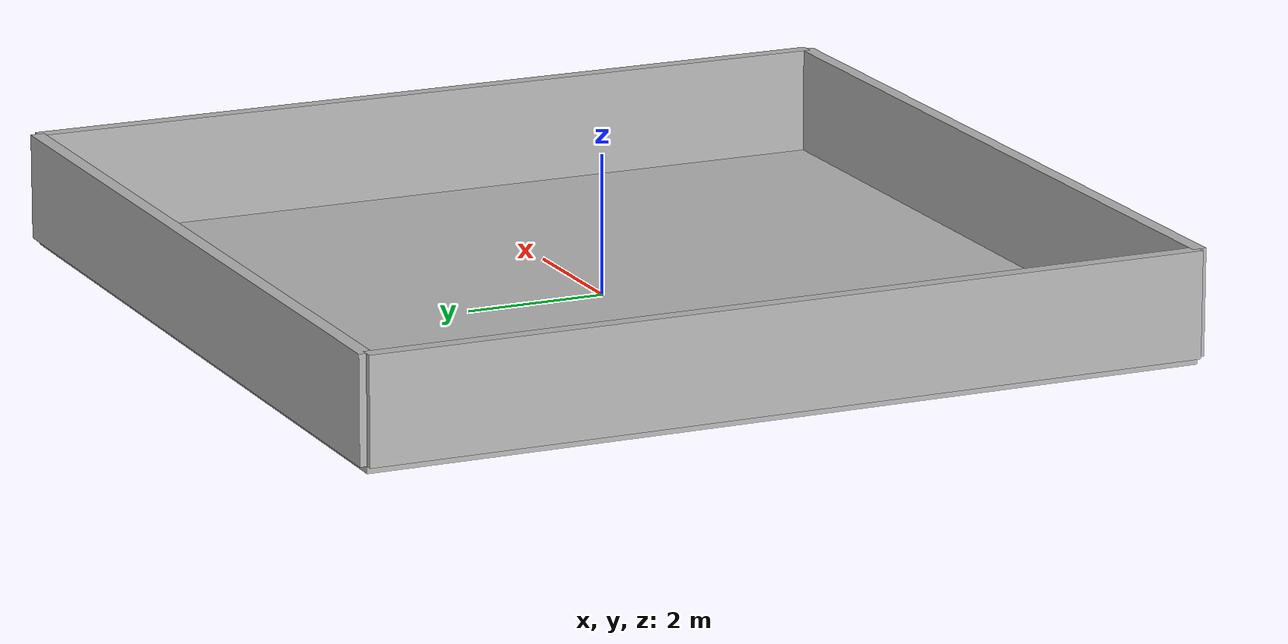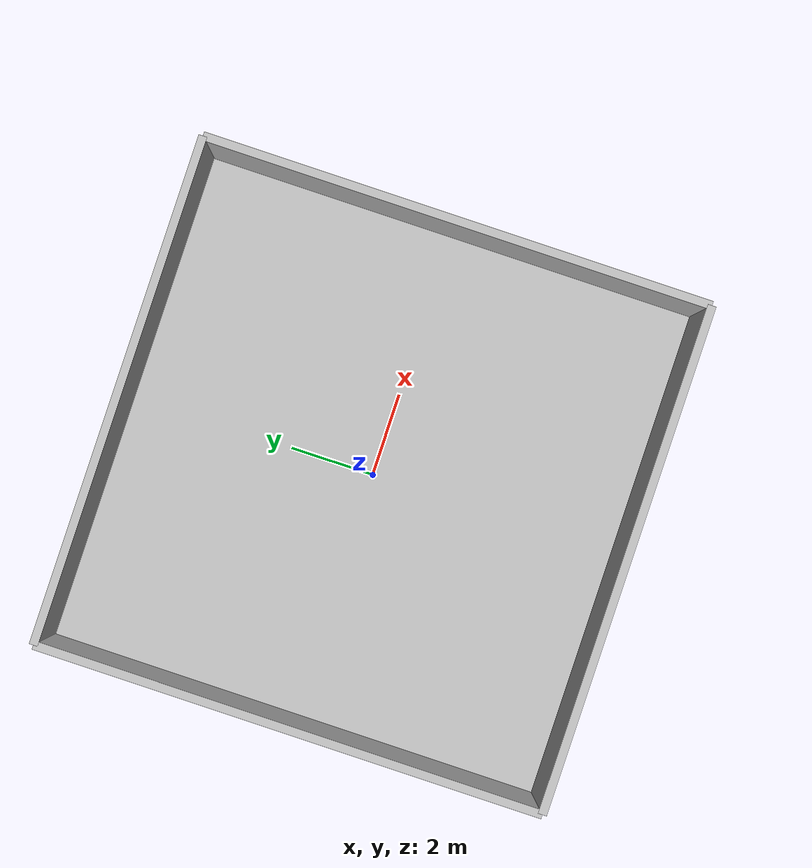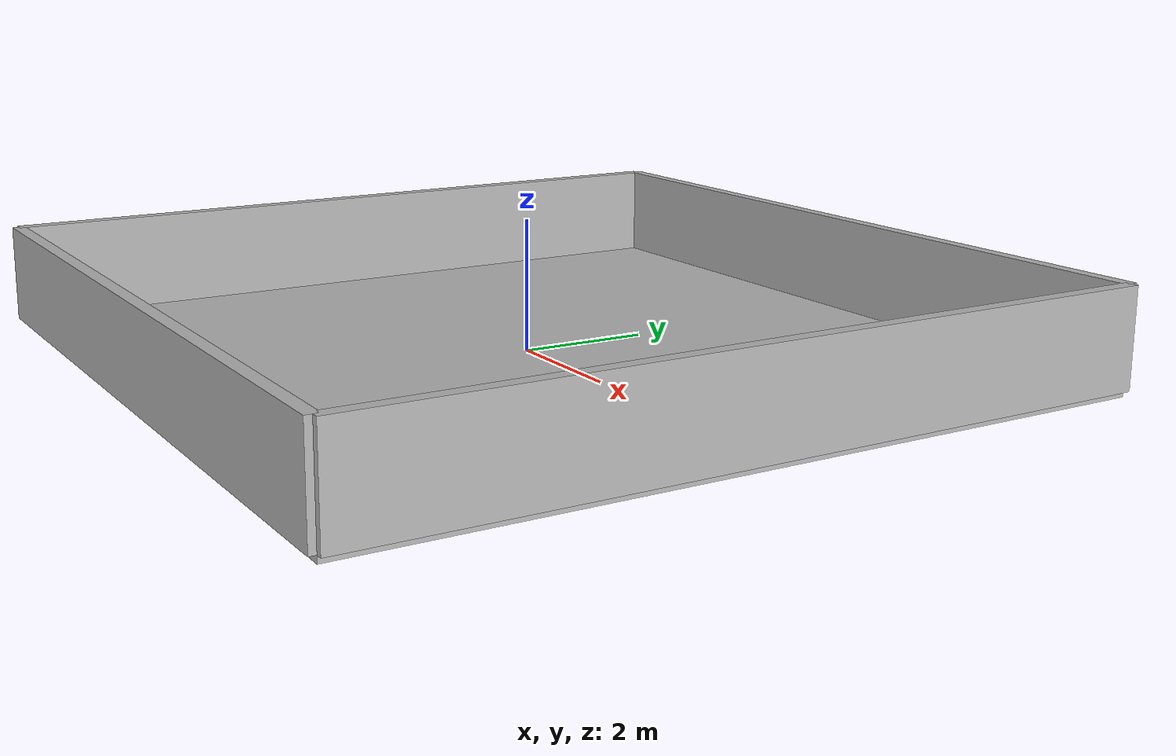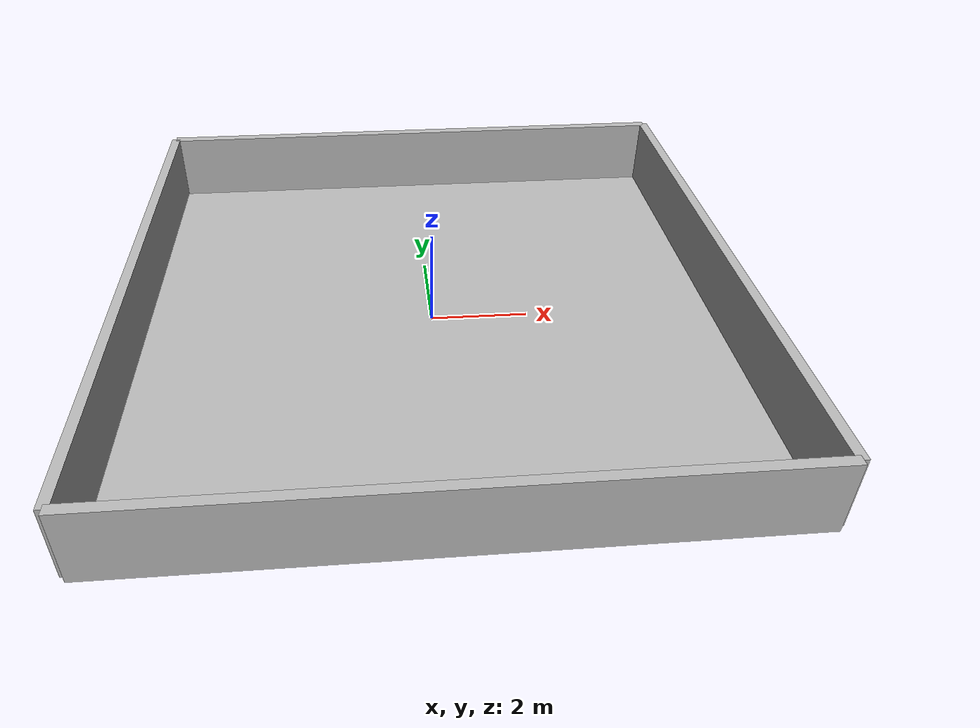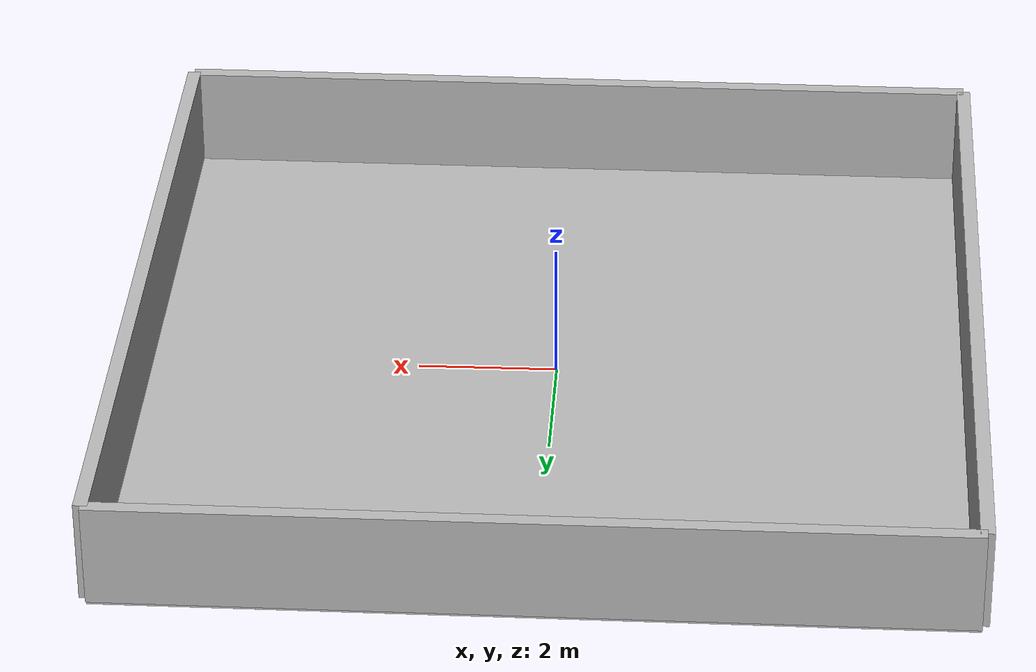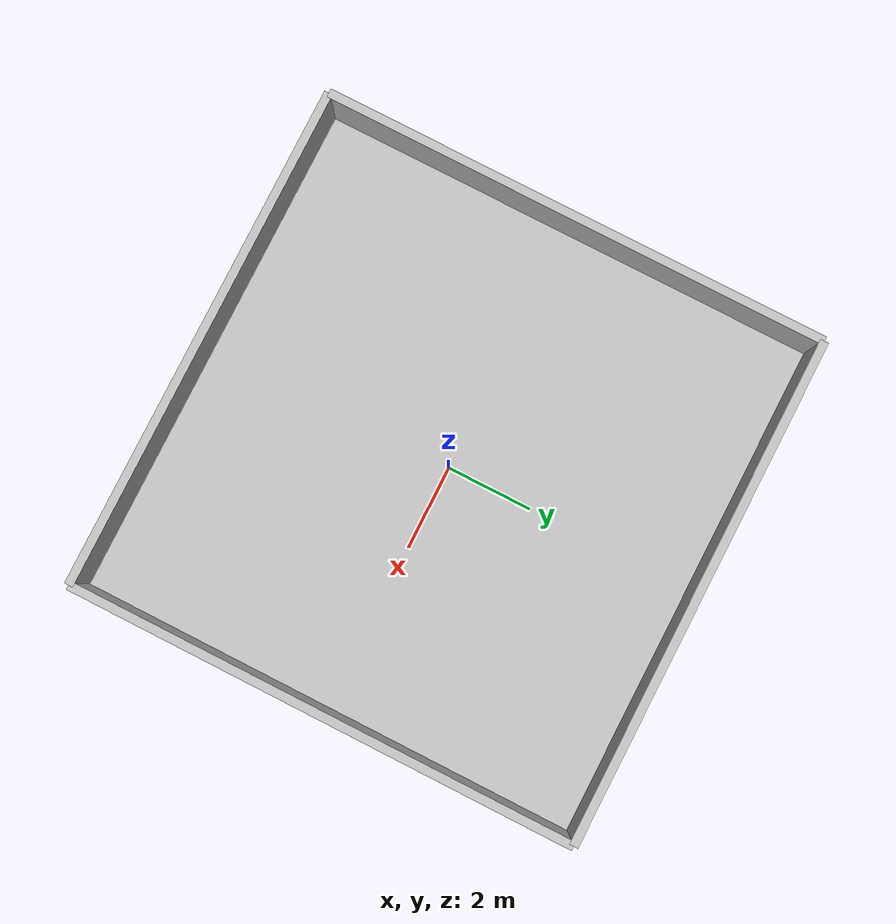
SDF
<?xml version="1.0"?>
<sdf version="1.6">
  <world name="walls_only">

    <gravity>0 0 -9.8</gravity>

    <physics type="ode">
      <max_step_size>0.001</max_step_size>
      <real_time_factor>1</real_time_factor>
      <real_time_update_rate>1000</real_time_update_rate>
    </physics>

    <!-- FLOOR -->
    <model name="floor">
      <static>true</static>
      <link name="link">
        <collision name="collision">
          <geometry>
            <box>
              <size>12 12 0.1</size>
            </box>
          </geometry>
        </collision>

        <visual name="visual">
          <geometry>
            <box>
              <size>12 12 0.1</size>
            </box>
          </geometry>
        </visual>
      </link>
      <pose>0 0 -0.05 0 0 0</pose>
    </model>

    <!-- NORTH WALL -->
    <model name="wall_north">
      <static>true</static>
      <link name="link">
        <collision name="collision">
          <geometry>
            <box>
              <size>12 0.2 1.5</size>
            </box>
          </geometry>
        </collision>
        <visual name="visual">
          <geometry>
            <box>
              <size>12 0.2 1.5</size>
            </box>
          </geometry>
        </visual>
      </link>
      <pose>0 6 0.75 0 0 0</pose>
    </model>

    <!-- SOUTH WALL -->
    <model name="wall_south">
      <static>true</static>
      <link name="link">
        <collision name="collision">
          <geometry>
            <box>
              <size>12 0.2 1.5</size>
            </box>
          </geometry>
        </collision>
        <visual name="visual">
          <geometry>
            <box>
              <size>12 0.2 1.5</size>
            </box>
          </geometry>
        </visual>
      </link>
      <pose>0 -6 0.75 0 0 0</pose>
    </model>

    <!-- EAST WALL -->
    <model name="wall_east">
      <static>true</static>
      <link name="link">
        <collision name="collision">
          <geometry>
            <box>
              <size>0.2 12 1.5</size>
            </box>
          </geometry>
        </collision>
        <visual name="visual">
          <geometry>
            <box>
              <size>0.2 12 1.5</size>
            </box>
          </geometry>
        </visual>
      </link>
      <pose>6 0 0.75 0 0 0</pose>
    </model>

    <!-- WEST WALL -->
    <model name="wall_west">
      <static>true</static>
      <link name="link">
        <collision name="collision">
          <geometry>
            <box>
              <size>0.2 12 1.5</size>
            </box>
          </geometry>
        </collision>
        <visual name="visual">
          <geometry>
            <box>
              <size>0.2 12 1.5</size>
            </box>
          </geometry>
        </visual>
      </link>
      <pose>-6 0 0.75 0 0 0</pose>
    </model>

    <!-- LIGHT -->
    <light name="ceiling_light" type="point">
      <pose>0 0 5 0 0 0</pose>
      <diffuse>1 1 1 1</diffuse>
      <specular>0.2 0.2 0.2 1</specular>
      <attenuation>
        <range>30</range>
        <constant>0.5</constant>
        <linear>0.01</linear>
        <quadratic>0.001</quadratic>
      </attenuation>
    </light>

  </world>
</sdf>
